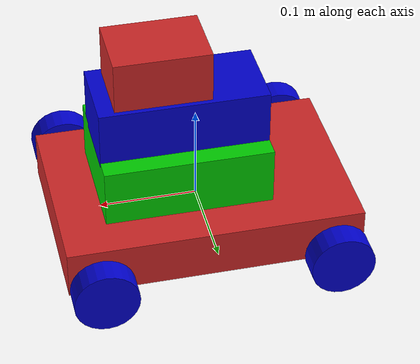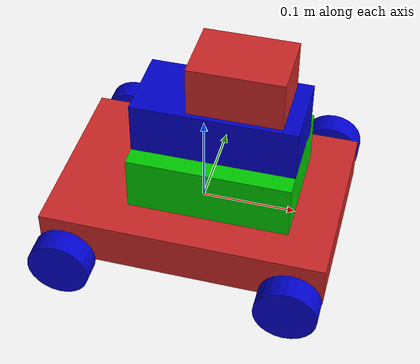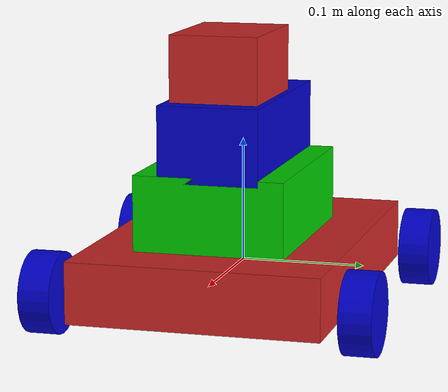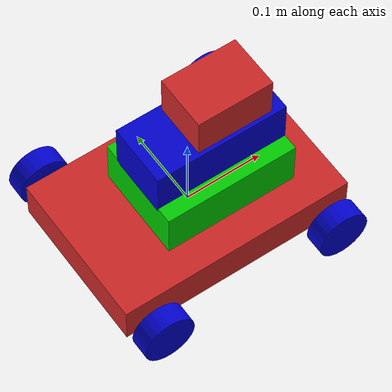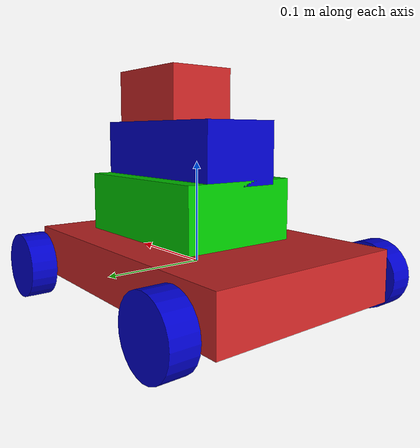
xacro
<?xml version="1.0"?>
<robot xmlns:xacro="http://www.ros.org/wiki/xacro" name="mobile_robot">

<!-- Base Link -->
<!--This is the reference (origin)-->
<link name="base_link">
</link>

<!--Box of 30cm length, 20cm width, and 4.9cm height
    (height is size of mounting bracket + plexiglass) -->
<xacro:property name="height" value="0.3" />
<xacro:property name="width" value="0.2" />
<xacro:property name="depth" value="0.049" />

<!--Chassis-->
<link name="chassis">
  <visual>
   <origin xyz="0 0 0" rpy="0 0 0"/>​
    <geometry>
      <box size="${height} ${width} ${depth}"/>
    </geometry>
  </visual>
  <collision>
    <geometry>
      <box size="${height} ${width} ${depth}"/>
    </geometry>
  </collision>
  <inertial>
    <mass value="1.0"/> <!-- [kg] -->
    <inertia ixx="0.014167" ixy="0.0" ixz="0.0" iyy="0.026667" iyz="0.0" izz="0.014167"/>
  </inertial>
</link>

<gazebo reference="chassis">
  <material>Gazebo/Red</material>
</gazebo>

<!--Joint that connects the chassis with the base link -->
<joint name="chassis_joint" type="fixed">
  <parent link="base_link"/>
  <child link="chassis"/>
  <origin xyz="0 0 0"/>
</joint>

<!--Material for color blue -->
<material name="blue">
    <color rgba="0 0 0.8 1"/>
</material>

<!--wheel has length(thickness) of 1 inch = 2.54cm-->
<!--and radius of 3.25cm-->
<xacro:property name="wheel_height" value="0.0254" />
<xacro:property name="wheel_radius" value="0.0325" />

<!-- Wheel macro-->
<xacro:macro name="wheel" params="name reflect_x reflect_y reflect_r reflect_axis">

  <!-- Wheel link -->
	<link name="${name}_wheel">
    <visual>
      <geometry>
        <cylinder length="${wheel_height}" radius="${wheel_radius}"/>
      </geometry>
      <material name="blue"/>
    </visual>
    <collision>
      <geometry>
        <cylinder length="${wheel_height}" radius="${wheel_radius}"/>
      </geometry>
    </collision>
    <inertial>
      <mass value="0.1"/>  <!-- [kg] -->
      <inertia ixx="0.00031" ixy="0.0" ixz="0.0" iyy="0.00031" iyz="0.0" izz="0.00054"/>
    </inertial>
  </link>

  <!-- Wheel joint -->
  <joint name="${name}_wheel_joint" type="continuous">
    <parent link="chassis"/>
    <child link="${name}_wheel"/>
    <origin xyz="${reflect_x*height/2.54} ${reflect_y*(width/2+0.0254)} -0.008" rpy="${reflect_r*1.5707} 0 0"/>
    <axis xyz="0 0 ${reflect_axis}"/>
  </joint>

  <!-- Adding transmission to wheels -->
  <transmission name="${name}_wheel_trans">
    <type>transmission_interface/SimpleTransmission</type>
    <actuator name="${name}_wheel_motor">
      <mechanicalReduction>1</mechanicalReduction>
    </actuator>
    <joint name="${name}_wheel_joint">
      <hardwareInterface>hardware_interface/VelocityJointInterface</hardwareInterface>
    </joint>
  </transmission>

  <gazebo reference="${name}_wheel">
    <material>Gazebo/Blue</material>
  </gazebo>

</xacro:macro>

<!-- Wheels definition-->
<xacro:wheel name="front_right" reflect_x="1" reflect_y="-1" reflect_r="1" reflect_axis="-1"/>
<xacro:wheel name="front_left" reflect_x="1" reflect_y="1" reflect_r="-1" reflect_axis="1"/>
<xacro:wheel name="rear_right" reflect_x="-1" reflect_y="-1" reflect_r="1" reflect_axis="-1"/>
<xacro:wheel name="rear_left" reflect_x="-1" reflect_y="1" reflect_r="-1" reflect_axis="1"/>

<!-- Head box -->
<material name="green">
  <color rgba="0 0.8 0 1"/>
</material>

<link name="head">
  <visual>
    <geometry>
      <!--Box of 17cm length, 13cm width, and 6cm height
        (height is standoff length + wood cutout -->
      <box size="0.17 0.12 0.06"/>
    </geometry>
    <material name="green"/>
  </visual>
</link>

<!--Joint that connects the headbox to the chassis-->
<!--fixed because no rotation-->
<joint name="head_joint" type="fixed">
  <parent link="chassis"/>
  <child link="head"/>
    <!--no rotation-->
  <origin xyz="0.019 0 0.055" rpy="0 0 0"/>
</joint>

<gazebo reference="head">
  <material>Gazebo/Green</material>
</gazebo>

<!-- JETSON NANO BOX -->
<link name="jetson">
  <visual>
    <geometry>
      <!--Box of 17cm length, 8cm width, and 6cm height
        (height is standoff length + wood cutout -->
      <box size="0.17 0.08 0.06"/>
    </geometry>
    <material name="blue"/>
  </visual>
</link>

<!--Joint that connects the headbox to the chassis-->
<!--fixed because no rotation-->
<joint name="jetson_joint" type="fixed">
  <parent link="head"/>
  <child link="jetson"/>
    <!--No rotation-->
  <origin xyz="0 0 0.055" rpy="0 0 0"/>
</joint>

<gazebo reference="jetson">
  <material>Gazebo/Blue</material>
</gazebo>

<!-- LIDAR -->
<link name="lidar">
  <visual>
    <geometry>
      <!--Box of 9.7cm length, 7cm width, and 5.5cm height
            (size of lidar) -->
      <box size="0.097 0.07 0.055"/>
    </geometry>
    <material name="red"/>
  </visual>
</link>

<!--Joint that connects the headbox to the chassis-->
<!--fixed because no rotation-->
<joint name="lidar_joint" type="fixed">
  <parent link="jetson"/>
  <child link="lidar"/>
    <!--rotation because lidar?-->
  <origin xyz="0.02 0 0.055" rpy="0 0 0"/>
</joint>

<gazebo reference="lidar">
  <material>Gazebo/Red</material>
</gazebo>

<!-- Link Gazebo and ROS -->
<gazebo>
  <plugin name="gazebo_ros_control" filename="libgazebo_ros_control.so">
    <robotNamespace>/</robotNamespace>
  </plugin>
</gazebo>

</robot>
